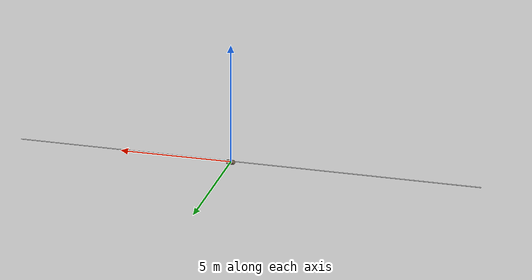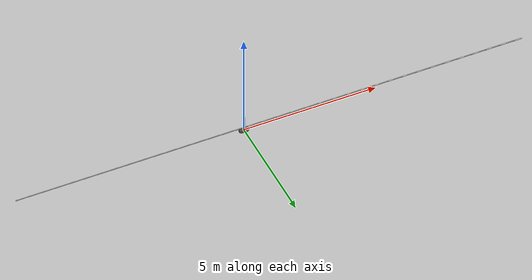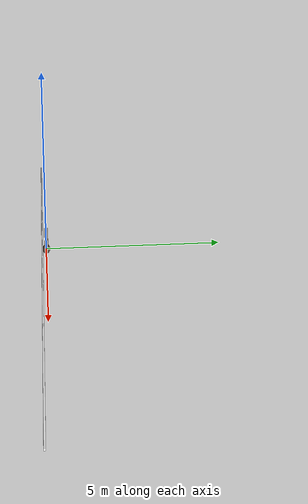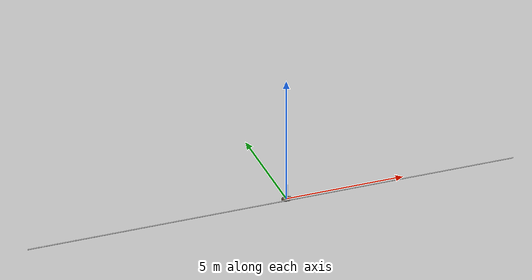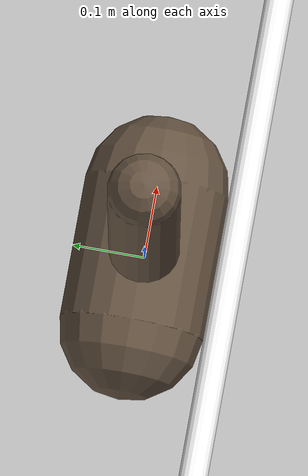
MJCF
<mujoco model="inverted pendulum">
  <compiler angle="radian"/>
  <option timestep="0.02" gravity="0 0 -9.81" density="10"/>
  <size nstack="3000"/>
  <default class="main">
    <joint limited="false" damping="0.7"/>
    <geom contype="1" conaffinity="1" friction="1 0.1 0.1" rgba="0.4 0.33 0.26 1"/>
    <general ctrlrange="-3 3"/>
  </default>
  <custom>
    <numeric name="constraint_stiffness" size="1" data="10000"/>
    <numeric name="constraint_limit_stiffness" size="1" data="10000"/>
    <numeric name="spring_mass_scale" size="1" data="0"/>
    <numeric name="spring_inertia_scale" size="1" data="1"/>
    <numeric name="solver_maxls" size="1" data="5"/>
  </custom>
  <worldbody>
    <geom name="rail" size="0.02 10" pos="0 -0.12 0" quat="0.707107 0 0.707107 0" type="capsule" rgba="1 1 1 1" />
    <light pos="0 0 3" dir="0 0 -1" diffuse="0.5 0.5 0.5"/>
    <body name="cart" pos="0 0 0">
      <joint name="slider" pos="0 0 0" axis="1 0 0" type="slide" limited="true" range="-10 10" damping="40"/>
      <geom name="cart" size="0.1 0.1" type="capsule" quat="0.707107 0 0.707107 0"/>
      <body name="pole">
        <joint name="hinge" pos="0 0 0" axis="0 1 0" range="-180 180"/>
        <geom name="cpole" size="0.049 0.3" pos="0 0 0.3" type="capsule"/>
      </body>
    </body>
  </worldbody>
  <actuator>
    <general name="slide" joint="slider" ctrllimited="true" gear="100 0 0 0 0 0"/>
  </actuator>
  <contact>
    <pair geom1="rail" geom2="cart" condim="3" friction="4"/>
  </contact>

</mujoco>
